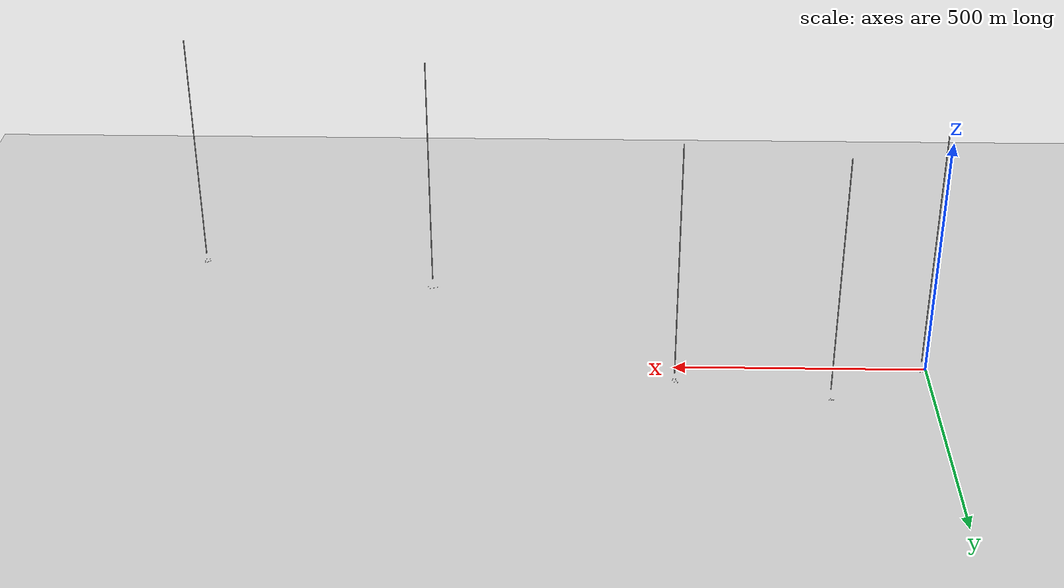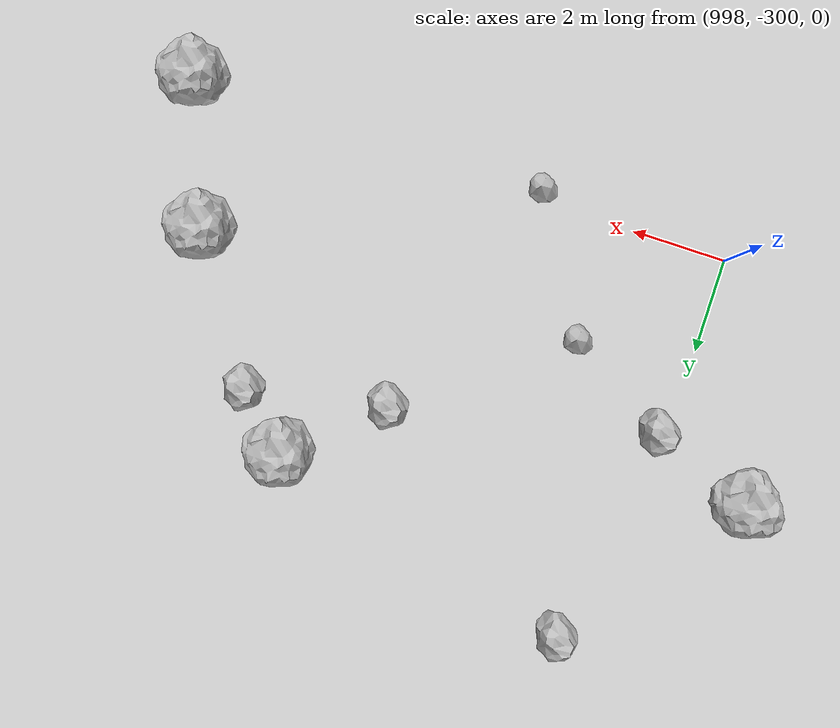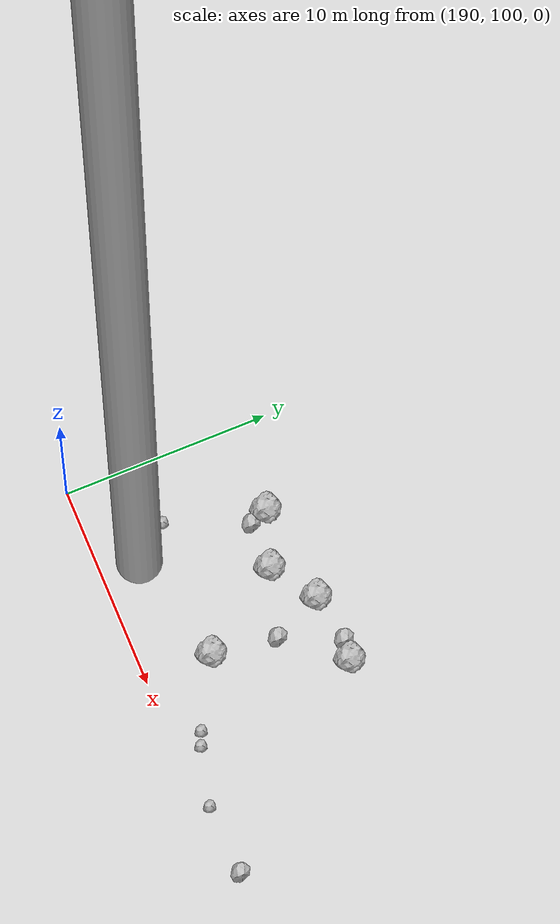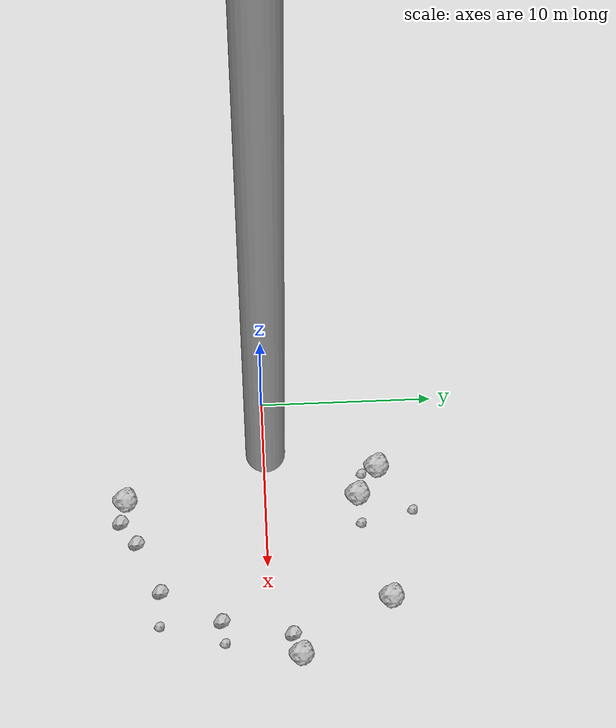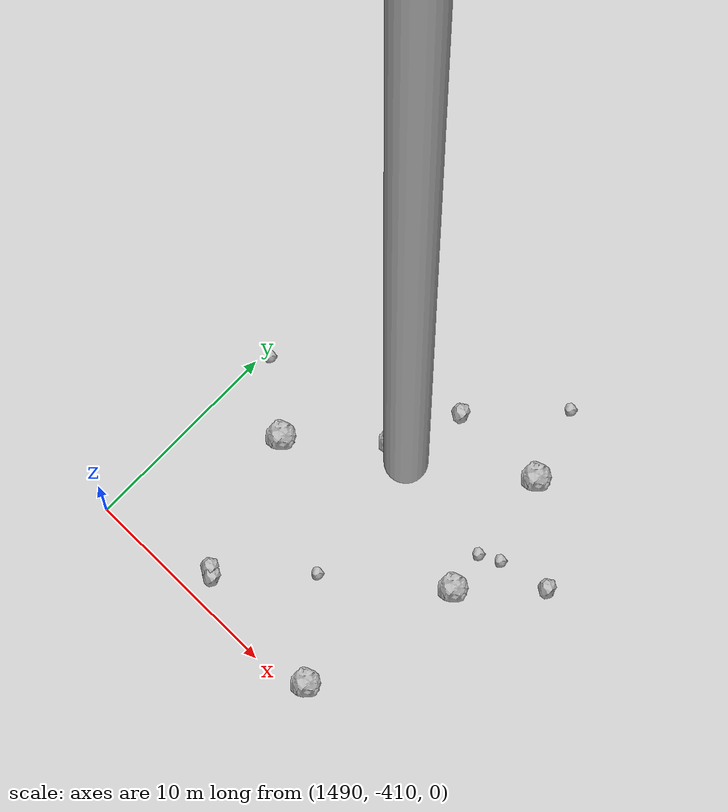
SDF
<?xml version="1.0" ?>
<sdf version="1.6">
  <world name="default">

    <include>
      <uri>model://custom_ground</uri>
    </include>

    <include>
      <uri>model://sun</uri>
    </include>

    <spherical_coordinates>
      <surface_model>EARTH_WGS84</surface_model>
      <latitude_deg>38.161479</latitude_deg>
      <longitude_deg>-122.454630</longitude_deg>
      <elevation>488.0</elevation>
      <heading_deg>90</heading_deg>
    </spherical_coordinates>

    <model name="rock1_0_0">
      <include>
        <uri>model://rock1</uri>
        <pose>5.932026655928333 5.403670488876518 0.5 0 0 0</pose>
      </include>
    </model>
    <model name="rock1_0_1">
      <include>
        <uri>model://rock1</uri>
        <pose>15.454868470600417 1.7325993645364601 0.5 0 0 0</pose>
      </include>
    </model>
    <model name="rock1_0_2">
      <include>
        <uri>model://rock1</uri>
        <pose>12.245201282296076 7.084787436680681 0.5 0 0 0</pose>
      </include>
    </model>
    <model name="rock1_0_3">
      <include>
        <uri>model://rock1</uri>
        <pose>4.267797581884185 6.591180951470076 0.5 0 0 0</pose>
      </include>
    </model>
    <model name="rock1_0_4">
      <include>
        <uri>model://rock1</uri>
        <pose>5.818153669751364 -8.204429153817106 0.5 0 0 0</pose>
      </include>
    </model>
    <model name="rock2_0_0">
      <include>
        <uri>model://rock2</uri>
        <pose>14.170921180916555 1.3162640327949262 0.3 0 0 0</pose>
      </include>
    </model>
    <model name="rock2_0_1">
      <include>
        <uri>model://rock2</uri>
        <pose>7.08292489062239 -8.499526445120678 0.3 0 0 0</pose>
      </include>
    </model>
    <model name="rock2_0_2">
      <include>
        <uri>model://rock2</uri>
        <pose>13.278080779671548 -2.7715694240069393 0.3 0 0 0</pose>
      </include>
    </model>
    <model name="rock2_0_3">
      <include>
        <uri>model://rock2</uri>
        <pose>11.384886319615315 -6.276217172420797 0.3 0 0 0</pose>
      </include>
    </model>
    <model name="rock2_0_4">
      <include>
        <uri>model://rock2</uri>
        <pose>8.374495211139392 -7.594248524076887 0.3 0 0 0</pose>
      </include>
    </model>
    <model name="rock3_0_0">
      <include>
        <uri>model://rock3</uri>
        <pose>6.933800617602293 8.583266780166028 0.2 0 0 0</pose>
      </include>
    </model>
    <model name="rock3_0_1">
      <include>
        <uri>model://rock3</uri>
        <pose>4.597149343363798 5.679314820635042 0.2 0 0 0</pose>
      </include>
    </model>
    <model name="rock3_0_2">
      <include>
        <uri>model://rock3</uri>
        <pose>13.434749830274734 -6.408317034014484 0.2 0 0 0</pose>
      </include>
    </model>
    <model name="rock3_0_3">
      <include>
        <uri>model://rock3</uri>
        <pose>14.583725432125556 -2.642782334662577 0.2 0 0 0</pose>
      </include>
    </model>
    <model name="rock3_0_4">
      <include>
        <uri>model://rock3</uri>
        <pose>7.614142280182614 5.546772412430217 0.2 0 0 0</pose>
      </include>
    </model>
    <model name="rock1_1_0">
      <include>
        <uri>model://rock1</uri>
        <pose>202.56857306710296 109.09396033292283 0.5 0 0 0</pose>
      </include>
    </model>
    <model name="rock1_1_1">
      <include>
        <uri>model://rock1</uri>
        <pose>199.19540647915443 108.82144083941407 0.5 0 0 0</pose>
      </include>
    </model>
    <model name="rock1_1_2">
      <include>
        <uri>model://rock1</uri>
        <pose>197.04869610285658 107.36808455419883 0.5 0 0 0</pose>
      </include>
    </model>
    <model name="rock1_1_3">
      <include>
        <uri>model://rock1</uri>
        <pose>199.87076685296213 103.26232197318089 0.5 0 0 0</pose>
      </include>
    </model>
    <model name="rock1_1_4">
      <include>
        <uri>model://rock1</uri>
        <pose>194.392175949052 108.27222385124637 0.5 0 0 0</pose>
      </include>
    </model>
    <model name="rock2_1_0">
      <include>
        <uri>model://rock2</uri>
        <pose>200.26958776819697 106.42331076621372 0.3 0 0 0</pose>
      </include>
    </model>
    <model name="rock2_1_1">
      <include>
        <uri>model://rock2</uri>
        <pose>201.50149878300851 109.24487733992734 0.3 0 0 0</pose>
      </include>
    </model>
    <model name="rock2_1_2">
      <include>
        <uri>model://rock2</uri>
        <pose>193.0292197176547 101.72359239659127 0.3 0 0 0</pose>
      </include>
    </model>
    <model name="rock2_1_3">
      <include>
        <uri>model://rock2</uri>
        <pose>194.69771563241832 107.41191753024498 0.3 0 0 0</pose>
      </include>
    </model>
    <model name="rock2_1_4">
      <include>
        <uri>model://rock2</uri>
        <pose>209.95342517769248 100.54884580339336 0.3 0 0 0</pose>
      </include>
    </model>
    <model name="rock3_1_0">
      <include>
        <uri>model://rock3</uri>
        <pose>194.779725357657 101.67432537264321 0.2 0 0 0</pose>
      </include>
    </model>
    <model name="rock3_1_1">
      <include>
        <uri>model://rock3</uri>
        <pose>203.72267807848436 101.1238707302447 0.2 0 0 0</pose>
      </include>
    </model>
    <model name="rock3_1_2">
      <include>
        <uri>model://rock3</uri>
        <pose>206.52883010405816 100.40645917278142 0.2 0 0 0</pose>
      </include>
    </model>
    <model name="rock3_1_3">
      <include>
        <uri>model://rock3</uri>
        <pose>203.06501403941422 101.40632041982545 0.2 0 0 0</pose>
      </include>
    </model>
    <model name="rock3_1_4">
      <include>
        <uri>model://rock3</uri>
        <pose>193.0724782117563 103.55367787526939 0.2 0 0 0</pose>
      </include>
    </model>
    <model name="rock1_2_0">
      <include>
        <uri>model://rock1</uri>
        <pose>503.7605908815354 45.50553293857771 0.5 0 0 0</pose>
      </include>
    </model>
    <model name="rock1_2_1">
      <include>
        <uri>model://rock1</uri>
        <pose>493.56898879120394 53.710405084396655 0.5 0 0 0</pose>
      </include>
    </model>
    <model name="rock1_2_2">
      <include>
        <uri>model://rock1</uri>
        <pose>496.97027573359355 42.169954923701965 0.5 0 0 0</pose>
      </include>
    </model>
    <model name="rock1_2_3">
      <include>
        <uri>model://rock1</uri>
        <pose>500.4811747777697 52.27166790073931 0.5 0 0 0</pose>
      </include>
    </model>
    <model name="rock1_2_4">
      <include>
        <uri>model://rock1</uri>
        <pose>496.2911527062062 48.258540684584744 0.5 0 0 0</pose>
      </include>
    </model>
    <model name="rock2_2_0">
      <include>
        <uri>model://rock2</uri>
        <pose>500.1326959444025 40.15362145332277 0.3 0 0 0</pose>
      </include>
    </model>
    <model name="rock2_2_1">
      <include>
        <uri>model://rock2</uri>
        <pose>509.899147228979 49.14191558092071 0.3 0 0 0</pose>
      </include>
    </model>
    <model name="rock2_2_2">
      <include>
        <uri>model://rock2</uri>
        <pose>505.8838363146063 52.8648114805648 0.3 0 0 0</pose>
      </include>
    </model>
    <model name="rock2_2_3">
      <include>
        <uri>model://rock2</uri>
        <pose>501.7954854417551 40.23741489644345 0.3 0 0 0</pose>
      </include>
    </model>
    <model name="rock2_2_4">
      <include>
        <uri>model://rock2</uri>
        <pose>498.640971037352 40.27816859949658 0.3 0 0 0</pose>
      </include>
    </model>
    <model name="rock3_2_0">
      <include>
        <uri>model://rock3</uri>
        <pose>500.22864944753263 43.78161287528276 0.2 0 0 0</pose>
      </include>
    </model>
    <model name="rock3_2_1">
      <include>
        <uri>model://rock3</uri>
        <pose>498.69109833986766 40.38759926091619 0.2 0 0 0</pose>
      </include>
    </model>
    <model name="rock3_2_2">
      <include>
        <uri>model://rock3</uri>
        <pose>501.04923995970626 56.32564789929471 0.2 0 0 0</pose>
      </include>
    </model>
    <model name="rock3_2_3">
      <include>
        <uri>model://rock3</uri>
        <pose>492.6502101745744 50.489356683159414 0.2 0 0 0</pose>
      </include>
    </model>
    <model name="rock3_2_4">
      <include>
        <uri>model://rock3</uri>
        <pose>500.54545867782383 59.85011909204374 0.2 0 0 0</pose>
      </include>
    </model>
    <model name="rock1_3_0">
      <include>
        <uri>model://rock1</uri>
        <pose>990.2102252558033 -300.1140310003694 0.5 0 0 0</pose>
      </include>
    </model>
    <model name="rock1_3_1">
      <include>
        <uri>model://rock1</uri>
        <pose>996.2564247266642 -295.31579379295215 0.5 0 0 0</pose>
      </include>
    </model>
    <model name="rock1_3_2">
      <include>
        <uri>model://rock1</uri>
        <pose>1005.6296929022069 -293.3385389441551 0.5 0 0 0</pose>
      </include>
    </model>
    <model name="rock1_3_3">
      <include>
        <uri>model://rock1</uri>
        <pose>1009.7540556679089 -300.16563245004625 0.5 0 0 0</pose>
      </include>
    </model>
    <model name="rock1_3_4">
      <include>
        <uri>model://rock1</uri>
        <pose>1008.6282182394189 -297.21988626824344 0.5 0 0 0</pose>
      </include>
    </model>
    <model name="rock2_3_0">
      <include>
        <uri>model://rock2</uri>
        <pose>999.028617291268 -291.48113600774934 0.3 0 0 0</pose>
      </include>
    </model>
    <model name="rock2_3_1">
      <include>
        <uri>model://rock2</uri>
        <pose>1003.7946246264818 -294.898991454754 0.3 0 0 0</pose>
      </include>
    </model>
    <model name="rock2_3_2">
      <include>
        <uri>model://rock2</uri>
        <pose>998.2870144014868 -296.11707739256036 0.3 0 0 0</pose>
      </include>
    </model>
    <model name="rock2_3_3">
      <include>
        <uri>model://rock2</uri>
        <pose>1006.7333911597912 -294.3369653082428 0.3 0 0 0</pose>
      </include>
    </model>
    <model name="rock2_3_4">
      <include>
        <uri>model://rock2</uri>
        <pose>991.9096670639115 -295.9178501069945 0.3 0 0 0</pose>
      </include>
    </model>
    <model name="rock3_3_0">
      <include>
        <uri>model://rock3</uri>
        <pose>1000.2329151583525 -308.64552224073 0.2 0 0 0</pose>
      </include>
    </model>
    <model name="rock3_3_1">
      <include>
        <uri>model://rock3</uri>
        <pose>1002.0845831899435 -300.25940586575894 0.2 0 0 0</pose>
      </include>
    </model>
    <model name="rock3_3_2">
      <include>
        <uri>model://rock3</uri>
        <pose>995.8765259205416 -295.1668768519761 0.2 0 0 0</pose>
      </include>
    </model>
    <model name="rock3_3_3">
      <include>
        <uri>model://rock3</uri>
        <pose>1002.5653161852898 -308.1096081362627 0.2 0 0 0</pose>
      </include>
    </model>
    <model name="rock3_3_4">
      <include>
        <uri>model://rock3</uri>
        <pose>1000.4241887725312 -297.46817735621954 0.2 0 0 0</pose>
      </include>
    </model>
    <model name="rock1_4_0">
      <include>
        <uri>model://rock1</uri>
        <pose>1493.4120646578642 -401.6980838198858 0.5 0 0 0</pose>
      </include>
    </model>
    <model name="rock1_4_1">
      <include>
        <uri>model://rock1</uri>
        <pose>1503.4111871745351 -394.5492071692284 0.5 0 0 0</pose>
      </include>
    </model>
    <model name="rock1_4_2">
      <include>
        <uri>model://rock1</uri>
        <pose>1502.5667013629145 -409.2064771334943 0.5 0 0 0</pose>
      </include>
    </model>
    <model name="rock1_4_3">
      <include>
        <uri>model://rock1</uri>
        <pose>1504.3261070753717 -401.08257061195195 0.5 0 0 0</pose>
      </include>
    </model>
    <model name="rock1_4_4">
      <include>
        <uri>model://rock1</uri>
        <pose>1497.3877009869627 -398.08924856698604 0.5 0 0 0</pose>
      </include>
    </model>
    <model name="rock2_4_0">
      <include>
        <uri>model://rock2</uri>
        <pose>1507.4688367709496 -397.91363086282223 0.3 0 0 0</pose>
      </include>
    </model>
    <model name="rock2_4_1">
      <include>
        <uri>model://rock2</uri>
        <pose>1495.412285612588 -408.4897928083755 0.3 0 0 0</pose>
      </include>
    </model>
    <model name="rock2_4_2">
      <include>
        <uri>model://rock2</uri>
        <pose>1495.7770371119998 -408.733186729759 0.3 0 0 0</pose>
      </include>
    </model>
    <model name="rock2_4_3">
      <include>
        <uri>model://rock2</uri>
        <pose>1498.6627240112607 -394.8566929546915 0.3 0 0 0</pose>
      </include>
    </model>
    <model name="rock2_4_4">
      <include>
        <uri>model://rock2</uri>
        <pose>1497.2826540511826 -396.75910548335906 0.3 0 0 0</pose>
      </include>
    </model>
    <model name="rock3_4_0">
      <include>
        <uri>model://rock3</uri>
        <pose>1503.9963525604885 -399.07484794050873 0.2 0 0 0</pose>
      </include>
    </model>
    <model name="rock3_4_1">
      <include>
        <uri>model://rock3</uri>
        <pose>1490.3098650244028 -399.34966429691053 0.2 0 0 0</pose>
      </include>
    </model>
    <model name="rock3_4_2">
      <include>
        <uri>model://rock3</uri>
        <pose>1504.967773640346 -398.566174928398 0.2 0 0 0</pose>
      </include>
    </model>
    <model name="rock3_4_3">
      <include>
        <uri>model://rock3</uri>
        <pose>1499.2271300901025 -405.1208137581708 0.2 0 0 0</pose>
      </include>
    </model>
    <model name="rock3_4_4">
      <include>
        <uri>model://rock3</uri>
        <pose>1502.2434207336382 -391.0833151766221 0.2 0 0 0</pose>
      </include>
    </model>

    <model name="cylinder_1">
      <static>true</static>
      <link name="link">
        <visual name="visual">
          <geometry>
            <cylinder>
              <radius>1</radius>
              <length>500</length>
            </cylinder>
          </geometry>
        </visual>
      </link>
      <pose>10 0 270 0 0 0</pose>
    </model>

    <model name="cylinder_2">
      <static>true</static>
      <link name="link">
        <visual name="visual">
          <geometry>
            <cylinder>
              <radius>1</radius>
              <length>500</length>
            </cylinder>
          </geometry>
        </visual>
      </link>
      <pose>200 100 270 0 0 0</pose>
    </model>

    <model name="cylinder_3">
      <static>true</static>
      <link name="link">
        <visual name="visual">
          <geometry>
            <cylinder>
              <radius>1</radius>
              <length>500</length>
            </cylinder>
          </geometry>
        </visual>
      </link>
      <pose>500 50 270 0 0 0</pose>
    </model>

    <model name="cylinder_4">
      <static>true</static>
      <link name="link">
        <visual name="visual">
          <geometry>
            <cylinder>
              <radius>1</radius>
              <length>500</length>
            </cylinder>
          </geometry>
        </visual>
      </link>
      <pose>1000 -300 270 0 0 0</pose>
    </model>

    <model name="cylinder_5">
      <static>true</static>
      <link name="link">
        <visual name="visual">
          <geometry>
            <cylinder>
              <radius>1</radius>
              <length>500</length>
            </cylinder>
          </geometry>
        </visual>
      </link>
      <pose>1500 -400 270 0 0 0</pose>
    </model>

  </world>
</sdf>

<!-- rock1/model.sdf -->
<sdf version="1.6">
  <model name="rock1">
    <static>true</static> <!-- Set to true if the model should not move -->
    <pose>0 0 0 0 0 0</pose>

    <!--z offset is 0.5 for full scale-->

    <link name="link">
      <collision name="rock1_collision">
        <geometry>
          <mesh>
            <uri>model://meshes/rock1.dae</uri>
          </mesh>
        </geometry>
      </collision>
      <visual name="rock1_visual">
        <geometry>
          <mesh>
            <uri>model://meshes/rock1.dae</uri>
          </mesh>
        </geometry>
        <material>
          <script>
            <uri>model://materials/scripts/sand_pebbles.material</uri>
            <name>custom_ground/Image</name>
          </script>
        </material>
      </visual>
    </link>
  </model>
</sdf>

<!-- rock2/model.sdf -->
<sdf version="1.6">
  <model name="rock2">
    <static>true</static> <!-- Set to true if the model should not move -->
    <pose>0 0 0 0 0 0</pose>

    <!--z offset is 0.3 for full scale-->

    <link name="link">
      <collision name="rock2_collision">
        <geometry>
          <mesh>
            <uri>model://meshes/rock2.dae</uri>
          </mesh>
        </geometry>
      </collision>
      <visual name="rock2_visual">
        <geometry>
          <mesh>
            <uri>model://meshes/rock2.dae</uri>
          </mesh>
        </geometry>
        <material>
          <script>
            <uri>model://materials/scripts/sand_pebbles.material</uri>
            <name>custom_ground/Image</name>
          </script>
        </material>
      </visual>
    </link>
  </model>
</sdf>

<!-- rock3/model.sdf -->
<sdf version="1.6">
  <model name="rock3">
    <static>true</static> <!-- Set to true if the model should not move -->
    <pose>0 0 0 0 0 0</pose>

    <!--z offset is 0.2 for full scale-->

    <link name="link">
      <collision name="rock3_collision">
        <geometry>
          <mesh>
            <uri>model://meshes/rock3.dae</uri>
          </mesh>
        </geometry>
      </collision>
      <visual name="rock3_visual">
        <geometry>
          <mesh>
            <uri>model://meshes/rock3.dae</uri>
          </mesh>
        </geometry>
        <material>
          <script>
            <uri>model://materials/scripts/sand_pebbles.material</uri>
            <name>custom_ground/Image</name>
          </script>
        </material>
      </visual>
    </link>
  </model>
</sdf>

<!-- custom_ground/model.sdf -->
<sdf version="1.6">
  <model name="custom_ground">
    <static>true</static> <!-- Ground is static and immovable -->
    <link name="ground_link">
      <pose>240 0 0 0 0 0</pose> <!-- Position and orientation relative to the world -->
      <!-- Visual Representation -->
      <visual name="ground_visual">
        <geometry>
          <plane>
            <normal>0 0 1</normal> <!-- Upward facing plane -->
            <size>500 500</size> <!-- Size of the plane -->
          </plane>
        </geometry>
        <material>
          <script>
            <uri>model://materials/scripts/sand_pebbles.material</uri>
            <name>custom_ground/Image</name>
          </script>
        </material>
      </visual>

      <!-- Collision Representation -->
      <collision name="ground_collision">
        <geometry>
          <plane>
            <normal>0 0 1</normal>
            <size>100 100</size>
          </plane>
        </geometry>
      </collision>

    </link>
  </model>
</sdf>
